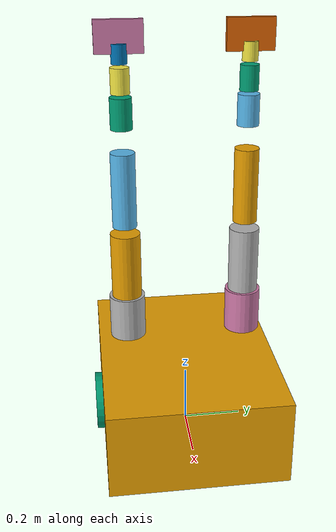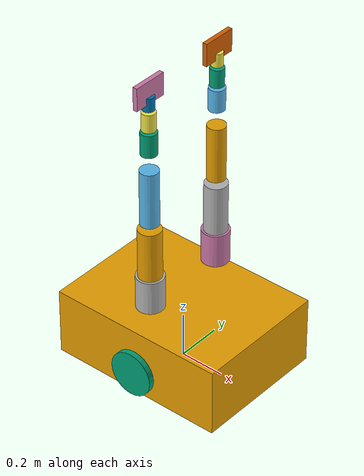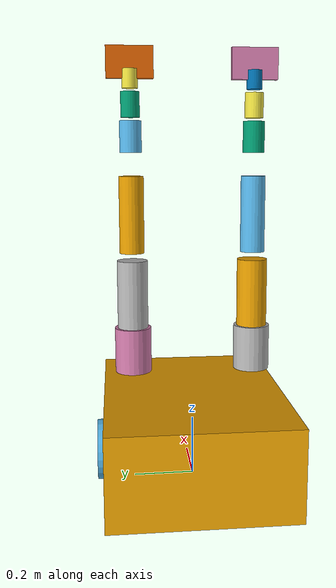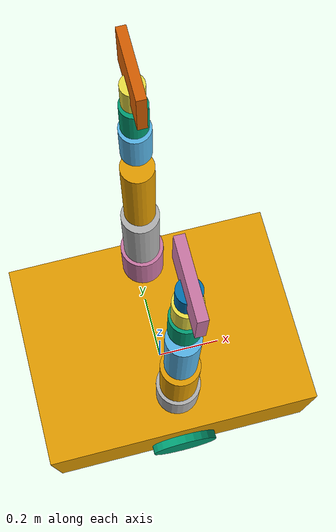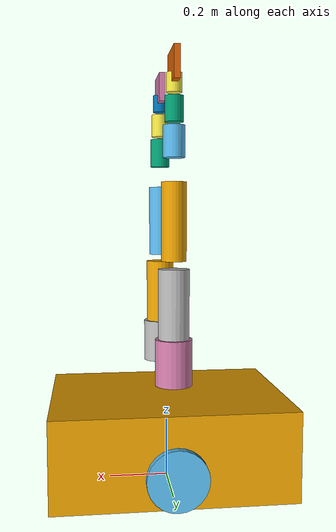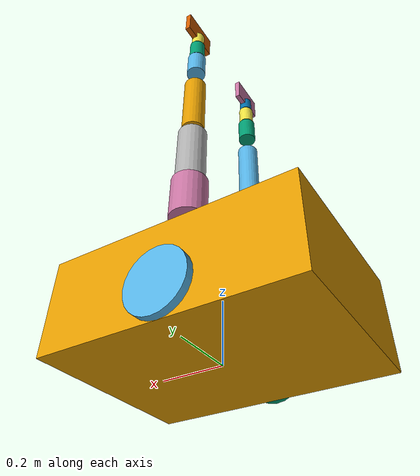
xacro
<?xml version="1.0"?>
<!--
  loader.urdf.xacro
  Whole-robot composition: base + left arm + right arm.
  TF tree: base_link -> torso_mount -> left_arm_base / right_arm_base
-->
<robot xmlns:xacro="http://www.ros.org/wiki/xacro" name="loading_robot">
  <xacro:include filename="$(find robot_base_hal)/urdf/base.urdf.xacro"/>
  <xacro:include filename="$(find robot_dual_arm_hal)/urdf/dual_arm.ros2_control.xacro"/>

  <xacro:macro name="arm_chain" params="arm_id parent *origin">
    <link name="${arm_id}_arm_base"/>
    <joint name="${arm_id}_arm_mount" type="fixed">
      <xacro:insert_block name="origin"/>
      <parent link="${parent}"/><child link="${arm_id}_arm_base"/>
    </joint>
    <link name="${arm_id}_shoulder_link">
      <visual><geometry><cylinder radius="0.06" length="0.15"/></geometry></visual>
      <collision><geometry><cylinder radius="0.06" length="0.15"/></geometry></collision>
      <inertial><mass value="5.0"/><inertia ixx="0.02" ixy="0" ixz="0" iyy="0.02" iyz="0" izz="0.01"/></inertial>
    </link>
    <joint name="${arm_id}_shoulder_pan" type="revolute">
      <parent link="${arm_id}_arm_base"/><child link="${arm_id}_shoulder_link"/>
      <origin xyz="0 0 0.05"/><axis xyz="0 0 1"/><limit lower="-3.14" upper="3.14" velocity="3.15" effort="100"/>
    </joint>
    <link name="${arm_id}_upper_arm_link">
      <visual><geometry><cylinder radius="0.05" length="0.3"/></geometry></visual>
      <collision><geometry><cylinder radius="0.05" length="0.3"/></geometry></collision>
      <inertial><mass value="8.0"/><inertia ixx="0.05" ixy="0" ixz="0" iyy="0.05" iyz="0" izz="0.01"/></inertial>
    </link>
    <joint name="${arm_id}_shoulder_lift" type="revolute">
      <parent link="${arm_id}_shoulder_link"/><child link="${arm_id}_upper_arm_link"/>
      <origin xyz="0 0 0.15"/><axis xyz="0 1 0"/><limit lower="-3.14" upper="3.14" velocity="3.15" effort="100"/>
    </joint>
    <link name="${arm_id}_forearm_link">
      <visual><geometry><cylinder radius="0.04" length="0.25"/></geometry></visual>
      <collision><geometry><cylinder radius="0.04" length="0.25"/></geometry></collision>
      <inertial><mass value="5.0"/><inertia ixx="0.03" ixy="0" ixz="0" iyy="0.03" iyz="0" izz="0.005"/></inertial>
    </link>
    <joint name="${arm_id}_elbow" type="revolute">
      <parent link="${arm_id}_upper_arm_link"/><child link="${arm_id}_forearm_link"/>
      <origin xyz="0 0 0.3"/><axis xyz="0 1 0"/><limit lower="-3.14" upper="3.14" velocity="3.15" effort="100"/>
    </joint>
    <link name="${arm_id}_wrist_1_link">
      <visual><geometry><cylinder radius="0.035" length="0.1"/></geometry></visual>
      <collision><geometry><cylinder radius="0.035" length="0.1"/></geometry></collision>
      <inertial><mass value="2.0"/><inertia ixx="0.005" ixy="0" ixz="0" iyy="0.005" iyz="0" izz="0.002"/></inertial>
    </link>
    <joint name="${arm_id}_wrist_1" type="revolute">
      <parent link="${arm_id}_forearm_link"/><child link="${arm_id}_wrist_1_link"/>
      <origin xyz="0 0 0.25"/><axis xyz="0 1 0"/><limit lower="-3.14" upper="3.14" velocity="6.28" effort="50"/>
    </joint>
    <link name="${arm_id}_wrist_2_link">
      <visual><geometry><cylinder radius="0.03" length="0.08"/></geometry></visual>
      <collision><geometry><cylinder radius="0.03" length="0.08"/></geometry></collision>
      <inertial><mass value="1.5"/><inertia ixx="0.003" ixy="0" ixz="0" iyy="0.003" iyz="0" izz="0.001"/></inertial>
    </link>
    <joint name="${arm_id}_wrist_2" type="revolute">
      <parent link="${arm_id}_wrist_1_link"/><child link="${arm_id}_wrist_2_link"/>
      <origin xyz="0 0 0.1"/><axis xyz="0 0 1"/><limit lower="-3.14" upper="3.14" velocity="6.28" effort="50"/>
    </joint>
    <link name="${arm_id}_wrist_3_link">
      <visual><geometry><cylinder radius="0.025" length="0.06"/></geometry></visual>
      <collision><geometry><cylinder radius="0.025" length="0.06"/></geometry></collision>
      <inertial><mass value="1.0"/><inertia ixx="0.001" ixy="0" ixz="0" iyy="0.001" iyz="0" izz="0.0005"/></inertial>
    </link>
    <joint name="${arm_id}_wrist_3" type="revolute">
      <parent link="${arm_id}_wrist_2_link"/><child link="${arm_id}_wrist_3_link"/>
      <origin xyz="0 0 0.08"/><axis xyz="0 1 0"/><limit lower="-3.14" upper="3.14" velocity="6.28" effort="50"/>
    </joint>
    <link name="${arm_id}_tcp_frame"/>
    <joint name="${arm_id}_tcp_joint" type="fixed">
      <parent link="${arm_id}_wrist_3_link"/><child link="${arm_id}_tcp_frame"/>
      <origin xyz="0 0 0.05"/>
    </joint>
    <link name="${arm_id}_paddle_link">
      <visual><geometry><box size="0.15 0.02 0.1"/></geometry></visual>
      <collision><geometry><box size="0.15 0.02 0.1"/></geometry></collision>
      <inertial><mass value="0.5"/><inertia ixx="0.001" ixy="0" ixz="0" iyy="0.001" iyz="0" izz="0.0005"/></inertial>
    </link>
    <joint name="${arm_id}_paddle" type="prismatic">
      <parent link="${arm_id}_tcp_frame"/><child link="${arm_id}_paddle_link"/>
      <axis xyz="0 1 0"/><limit lower="0" upper="0.15" velocity="0.5" effort="50"/>
    </joint>
  </xacro:macro>

  <xacro:arm_chain arm_id="left" parent="torso_mount">
    <origin xyz="0 0.2 0.1" rpy="0 0 1.5708"/>
  </xacro:arm_chain>
  <xacro:arm_chain arm_id="right" parent="torso_mount">
    <origin xyz="0 -0.2 0.1" rpy="0 0 -1.5708"/>
  </xacro:arm_chain>

  <xacro:dual_arm_ros2_control arm_id="left" use_fake_hardware="true" use_gazebo="false"/>
  <xacro:dual_arm_ros2_control arm_id="right" use_fake_hardware="true" use_gazebo="false"/>
</robot>

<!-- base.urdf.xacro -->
<robot xmlns:xacro="http://www.ros.org/wiki/xacro" name="robot_base">
  <xacro:include filename="$(find robot_base_hal)/urdf/base.ros2_control.xacro"/>
  <link name="base_link">
    <visual><geometry><box size="0.8 0.6 0.3"/></geometry><origin xyz="0 0 0.15"/></visual>
    <collision><geometry><box size="0.8 0.6 0.3"/></geometry><origin xyz="0 0 0.15"/></collision>
    <inertial><mass value="100.0"/><inertia ixx="5" ixy="0" ixz="0" iyy="5" iyz="0" izz="5"/></inertial>
  </link>
  <link name="left_wheel_link">
    <visual><geometry><cylinder radius="0.1" length="0.05"/></geometry></visual>
    <collision><geometry><cylinder radius="0.1" length="0.05"/></geometry></collision>
    <inertial><mass value="2.0"/><inertia ixx="0.01" ixy="0" ixz="0" iyy="0.01" iyz="0" izz="0.01"/></inertial>
  </link>
  <joint name="left_wheel" type="continuous">
    <parent link="base_link"/><child link="left_wheel_link"/>
    <origin xyz="0 0.3 0.1" rpy="-1.5708 0 0"/><axis xyz="0 0 1"/>
  </joint>
  <link name="right_wheel_link">
    <visual><geometry><cylinder radius="0.1" length="0.05"/></geometry></visual>
    <collision><geometry><cylinder radius="0.1" length="0.05"/></geometry></collision>
    <inertial><mass value="2.0"/><inertia ixx="0.01" ixy="0" ixz="0" iyy="0.01" iyz="0" izz="0.01"/></inertial>
  </link>
  <joint name="right_wheel" type="continuous">
    <parent link="base_link"/><child link="right_wheel_link"/>
    <origin xyz="0 -0.3 0.1" rpy="-1.5708 0 0"/><axis xyz="0 0 1"/>
  </joint>
  <link name="caster_link">
    <visual><geometry><sphere radius="0.05"/></geometry></visual>
    <collision><geometry><sphere radius="0.05"/></geometry></collision>
    <inertial><mass value="0.5"/><inertia ixx="0.001" ixy="0" ixz="0" iyy="0.001" iyz="0" izz="0.001"/></inertial>
  </link>
  <joint name="caster_joint" type="fixed">
    <parent link="base_link"/><child link="caster_link"/>
    <origin xyz="-0.3 0 0.05"/>
  </joint>
  <link name="torso_mount"/>
  <joint name="torso_mount_joint" type="fixed">
    <parent link="base_link"/><child link="torso_mount"/>
    <origin xyz="0 0 0.3"/>
  </joint>
  <xacro:base_ros2_control name="base" use_fake_hardware="true" use_gazebo="false"/>
</robot>
